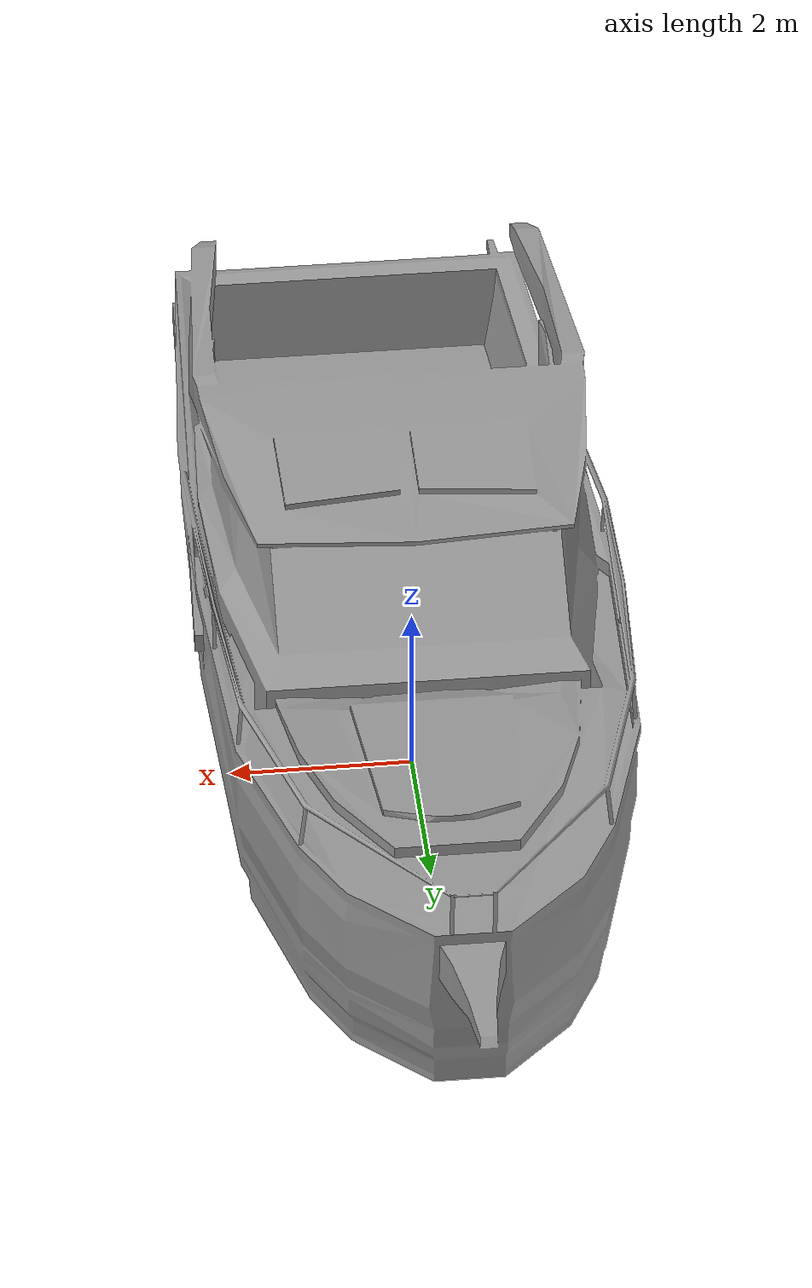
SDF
<?xml version='1.0'?>
<sdf version='1.7'>
  <model name='yacht_2'>
    <static>true</static>
    <link name='link'>
      <visual name='visual'>
        <pose>0 0 0 0 0 0</pose>
        <geometry>
          <mesh>
            <uri>/marinero_simulations/models/yacht_2/meshes/Yacht_2.stl</uri>
            <scale>5.0 5.0 5.0</scale>
          </mesh>
        </geometry>
        <material>
          <script>
            <uri>file://media/materials/scripts/gazebo.material</uri>
            <name>Gazebo/Grey</name>
          </script>
        </material>
      </visual>
      <collision name='collision'>
        <pose>0 0 0 0 0 0</pose>
        <geometry>
          <mesh>
            <uri>/marinero_simulations/models/yacht_2/meshes/Yacht_2.stl</uri>
            <scale>5.0 5.0 5.0</scale>
          </mesh>
        </geometry>
        <max_contacts>10</max_contacts>
      </collision>
    </link>
  </model>
</sdf>
